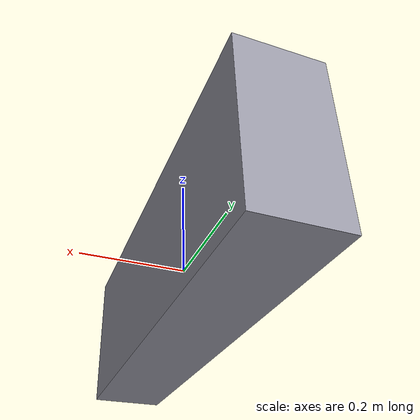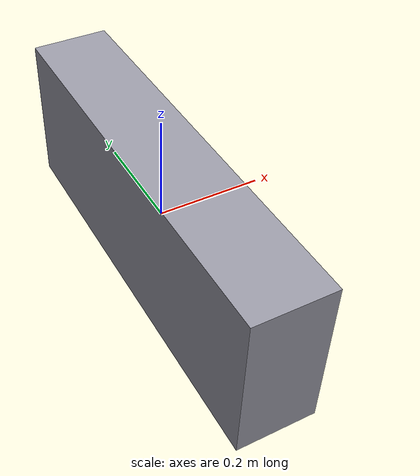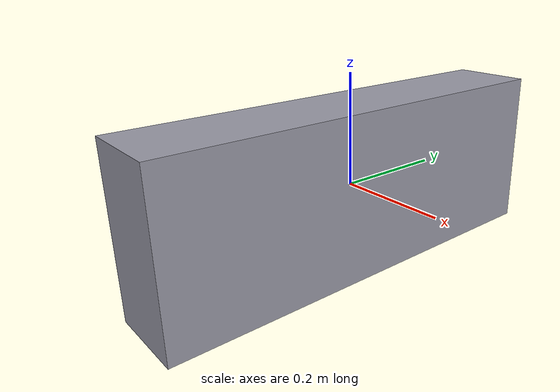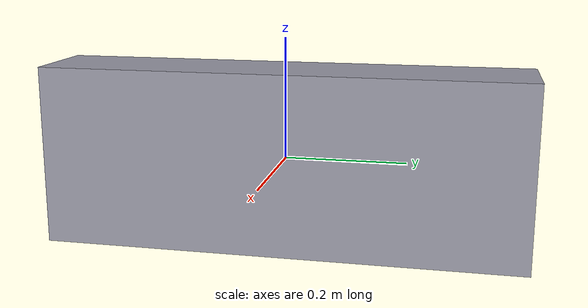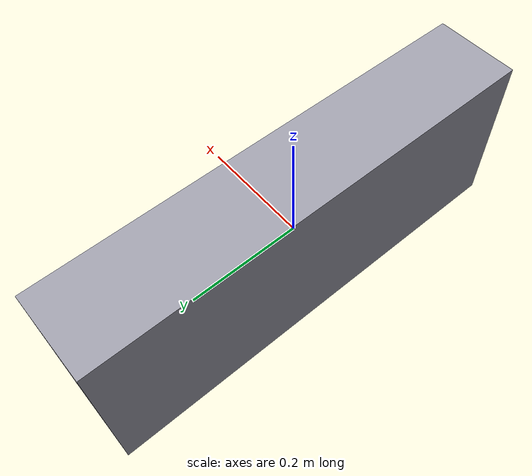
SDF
<?xml version="1.0" ?>
<sdf version="1.6">
  <model name="wall_protrusion">
    <static>true</static>

    <link name="link">
      <!-- Collision geometry - long and thin like a pipe or beam -->
      <collision name="collision">
        <geometry>
          <box>
            <size>0.15 0.8 0.3</size>
          </box>
        </geometry>
      </collision>

      <!-- Visual geometry - metallic gray color -->
      <visual name="visual">
        <geometry>
          <box>
            <size>0.15 0.8 0.3</size>
          </box>
        </geometry>
        <material>
          <ambient>0.5 0.5 0.55 1</ambient>
          <diffuse>0.6 0.6 0.65 1</diffuse>
          <specular>0.3 0.3 0.3 1</specular>
        </material>
      </visual>
    </link>
  </model>
</sdf>
